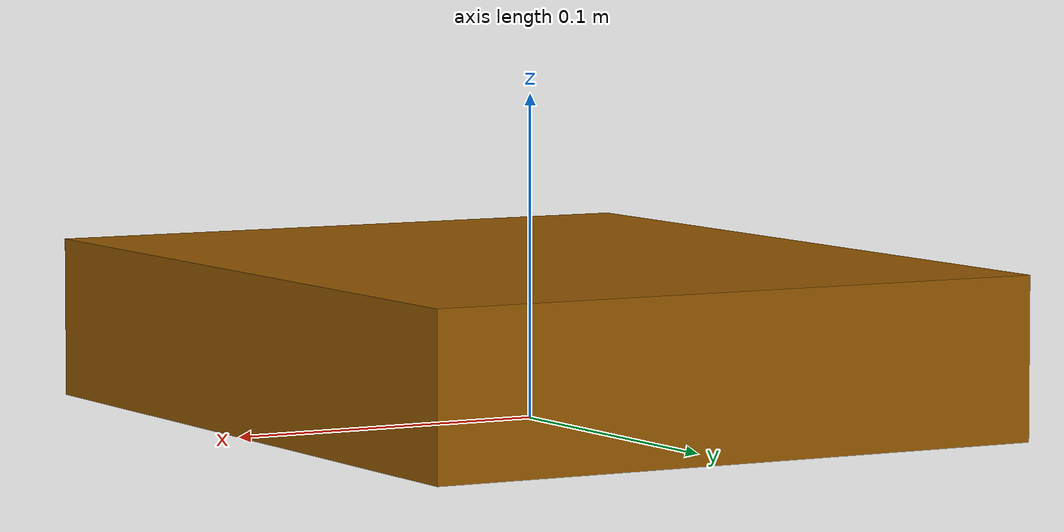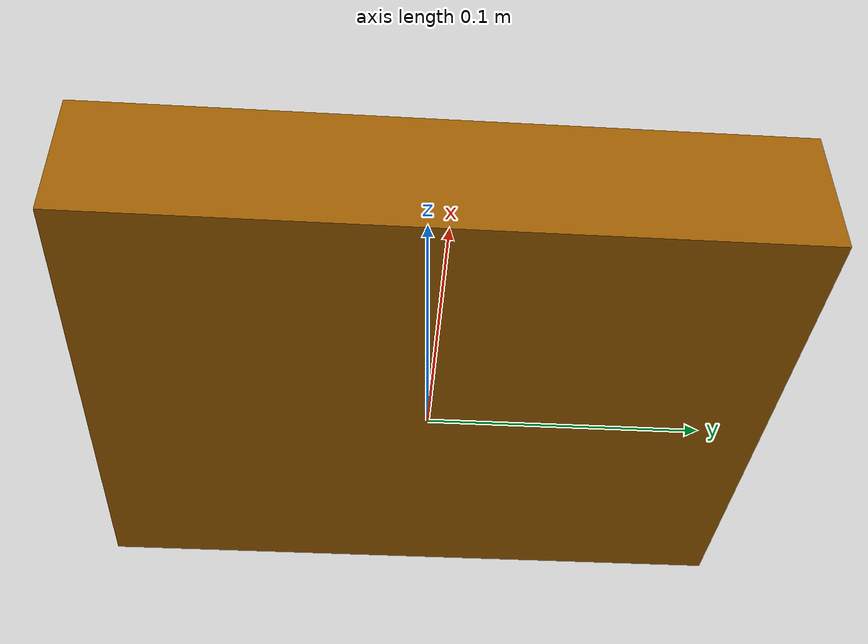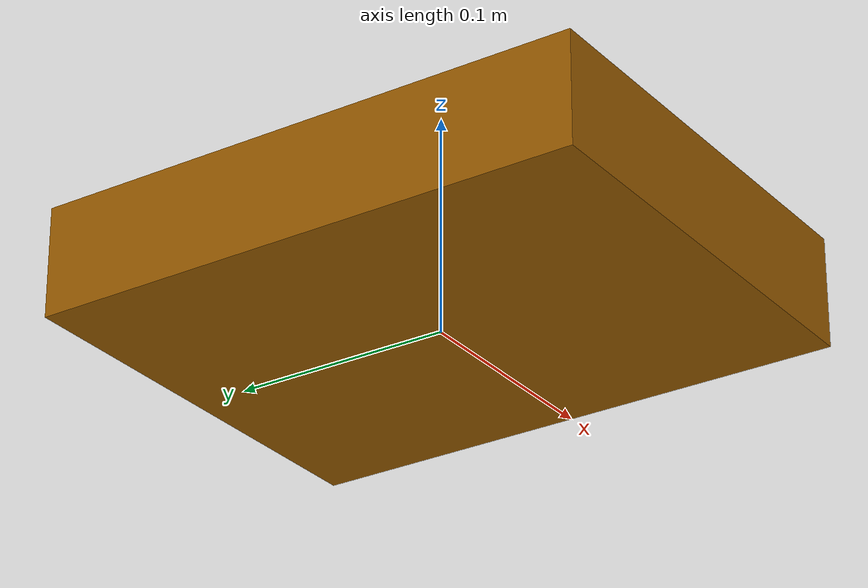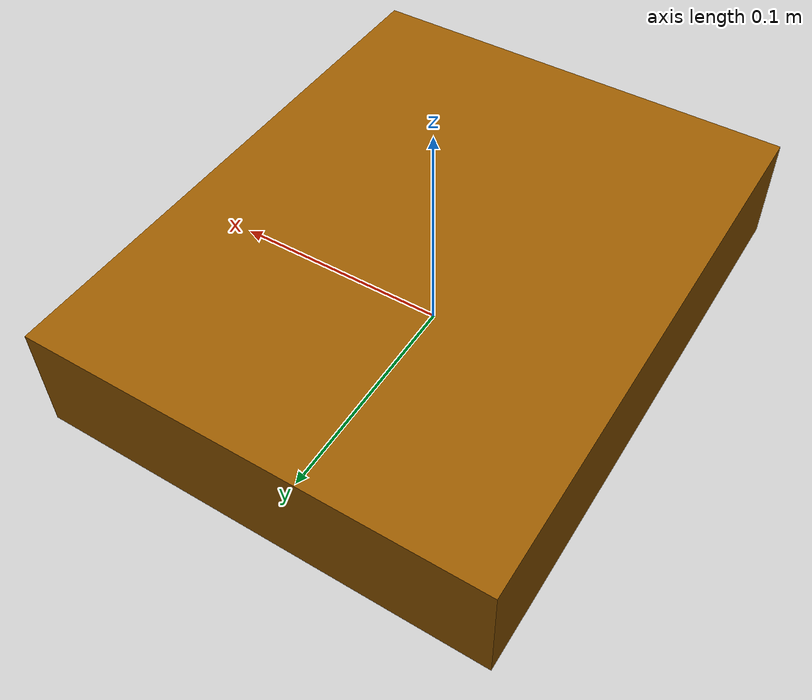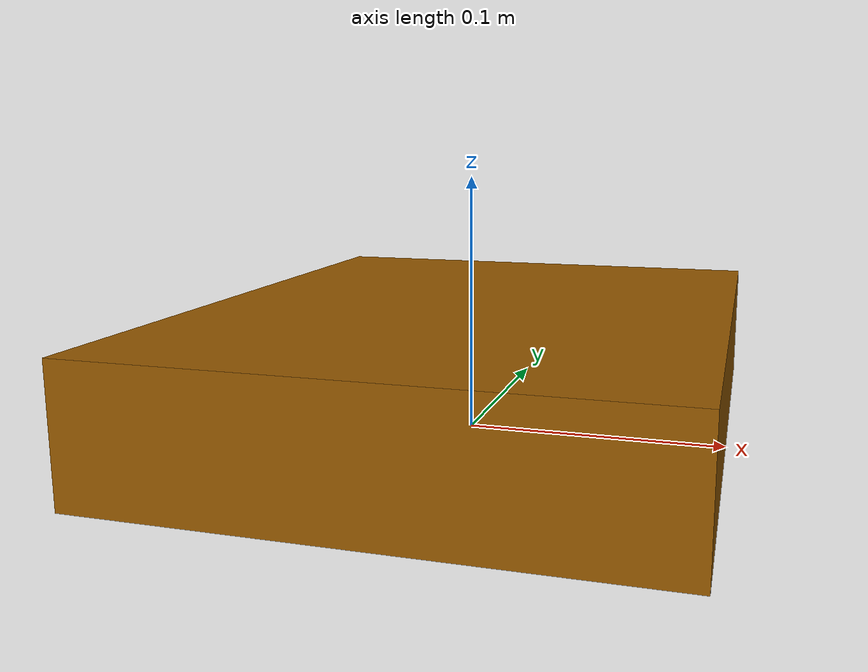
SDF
<?xml version="1.0"?>
<sdf version='1.6'>
<model name="package3">
  <link name="base_link">
    <inertial>
      <pose frame=''>0 0 0 0 0 0 </pose>
      <mass>1</mass>
        <inertia>
          <ixx>1.17e-4</ixx>
          <ixy>0</ixy>
          <ixz>0</ixz>
          <iyy>1.9e-4</iyy>
          <iyz>0</iyz>
          <izz>1.9e-4</izz>
        </inertia>
    </inertial>
    <visual name='base_link'>
      <pose frame=''>0 0 0.025 0 0 0</pose>
      <geometry>
        <box>
          <size>0.2 0.25 0.05</size>
        </box>
      </geometry>
      <material>
        <diffuse>0.59 0.35 0 1.0</diffuse>
      </material>
    </visual>

    <collision name='box_collision'>
      <pose>0 0 0.025 0 0 0</pose>
      <geometry>
        <box>
          <size>0.199 0.249 0.049</size>
        </box>
      </geometry>
       <surface>
          <friction>
            <ode>
              <mu>0.4</mu>
              <mu2>0</mu2>
              <fdir1>0 0 0</fdir1>
              <slip1>1</slip1>
              <slip2>0</slip2>
            </ode>
            <torsional>
              <coefficient>1</coefficient>
              <patch_radius>0</patch_radius>
              <surface_radius>0</surface_radius>
              <use_patch_radius>1</use_patch_radius>
              <ode>
                <slip>0</slip>
              </ode>
            </torsional>
          </friction>
          <bounce>
            <restitution_coefficient>0</restitution_coefficient>
            <threshold>1e+06</threshold>
          </bounce>
          <contact>
            <collide_without_contact>0</collide_without_contact>
            <collide_without_contact_bitmask>1</collide_without_contact_bitmask>
            <collide_bitmask>1</collide_bitmask>
            <ode>
              <soft_cfm>0</soft_cfm>
              <soft_erp>0.2</soft_erp>
              <kp>1e+13</kp>
              <kd>1</kd>
              <max_vel>0.01</max_vel>
              <min_depth>0</min_depth>
            </ode>
            <bullet>
              <split_impulse>1</split_impulse>
              <split_impulse_penetration_threshold>-0.01</split_impulse_penetration_threshold>
              <soft_cfm>0</soft_cfm>
              <soft_erp>0.2</soft_erp>
              <kp>1e+13</kp>
              <kd>1</kd>
            </bullet>
          </contact>
        </surface>
    </collision>

    <collision name='point_collision1'>
      <pose>0.1 0.125 0 0 0 0</pose>
      <geometry>
        <sphere><radius>1e-7</radius></sphere>
      </geometry>
    </collision>

    <collision name='point_collision2'>
      <pose>0.1 -0.125 0 0 0 0</pose>
      <geometry>
        <sphere><radius>1e-7</radius></sphere>
      </geometry>
    </collision>

    <collision name='point_collision3'>
      <pose>-0.1 0.125 0 0 0 0</pose>
      <geometry>
        <sphere><radius>1e-7</radius></sphere>
      </geometry>
    </collision>

    <collision name='point_collision4'>
      <pose>-0.1 -0.125 0 0 0 0</pose>
      <geometry>
        <sphere><radius>1e-7</radius></sphere>
      </geometry>
    </collision>

    <collision name='point_collision5'>
      <pose>0.1 0.125 0.025 0 0 0</pose>
      <geometry>
        <sphere><radius>1e-7</radius></sphere>
      </geometry>
    </collision>

    <collision name='point_collision6'>
      <pose>0.1 -0.125 0.025 0 0 0</pose>
      <geometry>
        <sphere><radius>1e-7</radius></sphere>
      </geometry>
    </collision>

    <collision name='point_collision7'>
      <pose>-0.1 0.125 0.025 0 0 0</pose>
      <geometry>
        <sphere><radius>1e-7</radius></sphere>
      </geometry>
    </collision>

    <collision name='point_collision8'>
      <pose>-0.1 -0.125 0.025 0 0 0</pose>
      <geometry>
        <sphere><radius>1e-7</radius></sphere>
      </geometry>
    </collision>
<!-- place more contact points on the bottom middle of the box-->
     <collision name='point_collision9'>
      <pose>0.1 0.0625 0 0 0 0</pose>
      <geometry>
        <sphere><radius>1e-7</radius></sphere>
      </geometry>
    </collision>

    <collision name='point_collision10'>
      <pose>0.1 -0.0625 0 0 0 0</pose>
      <geometry>
        <sphere><radius>1e-7</radius></sphere>
      </geometry>
    </collision>

    <collision name='point_collision11'>
      <pose>-0.1 0.0625 0 0 0 0</pose>
      <geometry>
        <sphere><radius>1e-7</radius></sphere>
      </geometry>
    </collision>

    <collision name='point_collision12'>
      <pose>-0.1 -0.0625 0 0 0 0</pose>
      <geometry>
        <sphere><radius>1e-7</radius></sphere>
      </geometry>
    </collision>

    <collision name='point_collision13'>
      <pose>0.1 0.03 0 0 0</pose>
      <geometry>
        <sphere><radius>1e-7</radius></sphere>
      </geometry>
    </collision>

    <collision name='point_collision14'>
      <pose>0.1 -0.03 0 0 0 0</pose>
      <geometry>
        <sphere><radius>1e-7</radius></sphere>
      </geometry>
    </collision>

    <collision name='point_collision15'>
      <pose>-0.1 0.03 0 0 0 0</pose>
      <geometry>
        <sphere><radius>1e-7</radius></sphere>
      </geometry>
    </collision>

    <collision name='point_collision16'>
      <pose>-0.1 -0.03 0 0 0 0</pose>
      <geometry>
        <sphere><radius>1e-7</radius></sphere>
      </geometry>
    </collision>

    <collision name='point_collision17'>
      <pose>0.1 0.09 0 0 0</pose>
      <geometry>
        <sphere><radius>1e-7</radius></sphere>
      </geometry>
    </collision>

    <collision name='point_collision18'>
      <pose>0.1 -0.09 0 0 0 0</pose>
      <geometry>
        <sphere><radius>1e-7</radius></sphere>
      </geometry>
    </collision>

    <collision name='point_collision19'>
      <pose>-0.1 0.09 0 0 0 0</pose>
      <geometry>
        <sphere><radius>1e-7</radius></sphere>
      </geometry>
    </collision>

    <collision name='point_collision20'>
      <pose>-0.1 -0.09 0 0 0 0</pose>
      <geometry>
        <sphere><radius>1e-7</radius></sphere>
      </geometry>
    </collision>

   </link>
</model>
</sdf>
